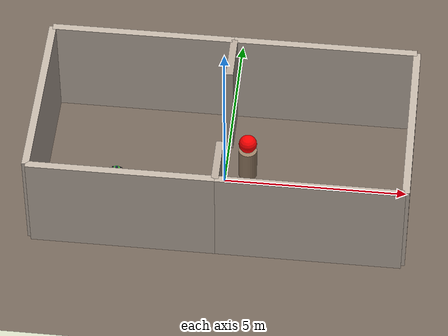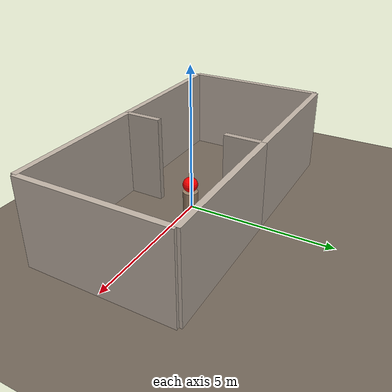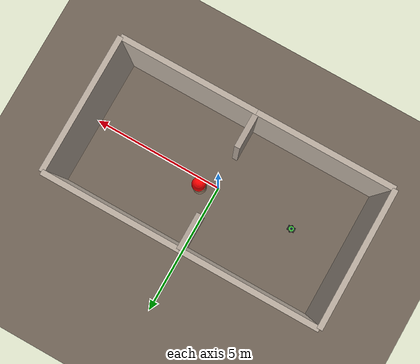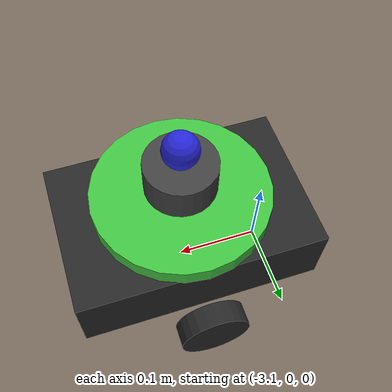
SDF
<?xml version="1.0" ?>
<sdf version="1.6">
  <world name="test_doorway">
    <plugin filename="gz-sim-physics-system" name="gz::sim::systems::Physics"/>
    <plugin filename="gz-sim-user-commands-system" name="gz::sim::systems::UserCommands"/>
    <plugin filename="gz-sim-scene-broadcaster-system" name="gz::sim::systems::SceneBroadcaster"/>
    <plugin filename="gz-sim-sensors-system" name="gz::sim::systems::Sensors">
      <render_engine>ogre2</render_engine>
    </plugin>
    <plugin filename="gz-sim-contact-system" name="gz::sim::systems::Contact"/>

    <scene>
      <ambient>0.6 0.6 0.6 1</ambient>
      <background>0.3 0.3 0.4 1</background>
    </scene>

    <light name="light_1" type="point">
      <pose>-2 0 4 0 0 0</pose>
      <diffuse>0.9 0.9 0.8 1</diffuse>
      <specular>0.3 0.3 0.3 1</specular>
      <attenuation><range>20</range><constant>0.3</constant><linear>0.01</linear><quadratic>0.001</quadratic></attenuation>
    </light>
    <light name="light_2" type="point">
      <pose>2 0 4 0 0 0</pose>
      <diffuse>0.8 0.8 0.7 1</diffuse>
      <specular>0.2 0.2 0.2 1</specular>
      <attenuation><range>20</range><constant>0.3</constant><linear>0.01</linear><quadratic>0.001</quadratic></attenuation>
    </light>

    <physics type="ode">
      <max_step_size>0.001</max_step_size>
      <real_time_factor>1.0</real_time_factor>
      <real_time_update_rate>1000</real_time_update_rate>
    </physics>

    <!-- Floor -->
    <model name="floor">
      <static>true</static>
      <link name="link">
        <collision name="collision"><geometry><plane><normal>0 0 1</normal><size>20 20</size></plane></geometry></collision>
        <visual name="visual">
          <geometry><plane><normal>0 0 1</normal><size>20 20</size></plane></geometry>
          <material><ambient>0.4 0.35 0.3 1</ambient><diffuse>0.45 0.4 0.35 1</diffuse></material>
        </visual>
      </link>
    </model>

    <!-- ==================== ROOM 1 (left, 5m x 5m) ==================== -->
    <model name="r1_north">
      <static>true</static>
      <link name="link">
        <pose>-2.5 2.5 1.5 0 0 0</pose>
        <collision name="collision"><geometry><box><size>5 0.2 3</size></box></geometry></collision>
        <visual name="visual"><geometry><box><size>5 0.2 3</size></box></geometry><material><ambient>0.7 0.65 0.6 1</ambient><diffuse>0.75 0.7 0.65 1</diffuse></material></visual>
      </link>
    </model>
    <model name="r1_south">
      <static>true</static>
      <link name="link">
        <pose>-2.5 -2.5 1.5 0 0 0</pose>
        <collision name="collision"><geometry><box><size>5 0.2 3</size></box></geometry></collision>
        <visual name="visual"><geometry><box><size>5 0.2 3</size></box></geometry><material><ambient>0.7 0.65 0.6 1</ambient><diffuse>0.75 0.7 0.65 1</diffuse></material></visual>
      </link>
    </model>
    <model name="r1_west">
      <static>true</static>
      <link name="link">
        <pose>-5 0 1.5 0 0 0</pose>
        <collision name="collision"><geometry><box><size>0.2 5 3</size></box></geometry></collision>
        <visual name="visual"><geometry><box><size>0.2 5 3</size></box></geometry><material><ambient>0.7 0.65 0.6 1</ambient><diffuse>0.75 0.7 0.65 1</diffuse></material></visual>
      </link>
    </model>

    <!-- ==================== DIVIDING WALL WITH DOORWAY ==================== -->
    <!-- Dividing wall - top section (above doorway) -->
    <model name="div_wall_top">
      <static>true</static>
      <link name="link">
        <pose>0 1.85 1.5 0 0 0</pose>
        <collision name="collision"><geometry><box><size>0.2 1.3 3</size></box></geometry></collision>
        <visual name="visual"><geometry><box><size>0.2 1.3 3</size></box></geometry><material><ambient>0.65 0.6 0.55 1</ambient><diffuse>0.7 0.65 0.6 1</diffuse></material></visual>
      </link>
    </model>
    <!-- Dividing wall - bottom section (below doorway) -->
    <model name="div_wall_bottom">
      <static>true</static>
      <link name="link">
        <pose>0 -1.85 1.5 0 0 0</pose>
        <collision name="collision"><geometry><box><size>0.2 1.3 3</size></box></geometry></collision>
        <visual name="visual"><geometry><box><size>0.2 1.3 3</size></box></geometry><material><ambient>0.65 0.6 0.55 1</ambient><diffuse>0.7 0.65 0.6 1</diffuse></material></visual>
      </link>
    </model>
    <!-- Doorway gap: y from -1.2 to +1.2 (2.4m wide opening) -->

    <!-- ==================== ROOM 2 (right, 5m x 5m) ==================== -->
    <model name="r2_north">
      <static>true</static>
      <link name="link">
        <pose>2.5 2.5 1.5 0 0 0</pose>
        <collision name="collision"><geometry><box><size>5 0.2 3</size></box></geometry></collision>
        <visual name="visual"><geometry><box><size>5 0.2 3</size></box></geometry><material><ambient>0.7 0.65 0.6 1</ambient><diffuse>0.75 0.7 0.65 1</diffuse></material></visual>
      </link>
    </model>
    <model name="r2_south">
      <static>true</static>
      <link name="link">
        <pose>2.5 -2.5 1.5 0 0 0</pose>
        <collision name="collision"><geometry><box><size>5 0.2 3</size></box></geometry></collision>
        <visual name="visual"><geometry><box><size>5 0.2 3</size></box></geometry><material><ambient>0.7 0.65 0.6 1</ambient><diffuse>0.75 0.7 0.65 1</diffuse></material></visual>
      </link>
    </model>
    <model name="r2_east">
      <static>true</static>
      <link name="link">
        <pose>5 0 1.5 0 0 0</pose>
        <collision name="collision"><geometry><box><size>0.2 5 3</size></box></geometry></collision>
        <visual name="visual"><geometry><box><size>0.2 5 3</size></box></geometry><material><ambient>0.7 0.65 0.6 1</ambient><diffuse>0.75 0.7 0.65 1</diffuse></material></visual>
      </link>
    </model>

    <!-- ==================== STATIONARY HUMAN (near doorway) ==================== -->
    <model name="human_static_1">
      <static>true</static>
      <pose>0.6 0.3 0.5 0 0 -1.5</pose>
      <link name="link">
        <collision name="collision">
          <geometry><cylinder><radius>0.25</radius><length>1.0</length></cylinder></geometry>
        </collision>
        <visual name="body">
          <geometry><cylinder><radius>0.25</radius><length>1.0</length></cylinder></geometry>
          <material><ambient>0.55 0.45 0.35 1</ambient><diffuse>0.6 0.5 0.4 1</diffuse></material>
        </visual>
        <visual name="head">
          <pose>0 0 0.75 0 0 0</pose>
          <geometry><sphere><radius>0.25</radius></sphere></geometry>
          <material><ambient>1.0 0.0 0.0 1</ambient><diffuse>1.0 0.0 0.0 1</diffuse></material>
        </visual>
      </link>
    </model>

    <!-- ==================== TURTLEBOT3 ROVER ==================== -->
    <model name="turtlebot3_rover">
      <static>false</static>
      <pose>-3 0 0.0 0 0 0</pose>

      <link name="base_footprint"><pose>0 0 0.01 0 0 0</pose></link>
      <link name="base_link">
        <pose>0 0 0.08 0 0 0</pose>
        <inertial><mass>1.5</mass><inertia><ixx>0.01</ixx><iyy>0.01</iyy><izz>0.01</izz></inertia></inertial>
        <collision name="base_collision"><geometry><box><size>0.28 0.18 0.08</size></box></geometry></collision>
        <visual name="base_visual"><geometry><box><size>0.28 0.18 0.08</size></box></geometry><material><ambient>0.1 0.1 0.1 1</ambient><diffuse>0.15 0.15 0.15 1</diffuse></material></visual>
      </link>
      <link name="top_plate"><pose>0 0 0.14 0 0 0</pose><inertial><mass>0.3</mass><inertia><ixx>0.002</ixx><iyy>0.002</iyy><izz>0.002</izz></inertia></inertial><collision name="top_plate_collision"><geometry><cylinder><radius>0.10</radius><length>0.02</length></cylinder></geometry></collision><visual name="top_plate_visual"><geometry><cylinder><radius>0.10</radius><length>0.02</length></cylinder></geometry><material><ambient>0.2 0.7 0.2 1</ambient><diffuse>0.25 0.75 0.25 1</diffuse></material></visual></link>
      <link name="wheel_left"><pose>0 0.12 0.04 -1.5708 0 0</pose><inertial><mass>0.15</mass><inertia><ixx>0.0001</ixx><iyy>0.0001</iyy><izz>0.0001</izz></inertia></inertial><collision name="wheel_left_collision"><geometry><cylinder><radius>0.04</radius><length>0.025</length></cylinder></geometry><surface><friction><ode><mu>1.0</mu><mu2>1.0</mu2></ode></friction></surface></collision><visual name="wheel_left_visual"><geometry><cylinder><radius>0.04</radius><length>0.025</length></cylinder></geometry><material><ambient>0.1 0.1 0.1 1</ambient><diffuse>0.15 0.15 0.15 1</diffuse></material></visual></link>
      <link name="wheel_right"><pose>0 -0.12 0.04 -1.5708 0 0</pose><inertial><mass>0.15</mass><inertia><ixx>0.0001</ixx><iyy>0.0001</iyy><izz>0.0001</izz></inertia></inertial><collision name="wheel_right_collision"><geometry><cylinder><radius>0.04</radius><length>0.025</length></cylinder></geometry><surface><friction><ode><mu>1.0</mu><mu2>1.0</mu2></ode></friction></surface></collision><visual name="wheel_right_visual"><geometry><cylinder><radius>0.04</radius><length>0.025</length></cylinder></geometry><material><ambient>0.1 0.1 0.1 1</ambient><diffuse>0.15 0.15 0.15 1</diffuse></material></visual></link>
      <link name="caster_front"><pose>0.1 0 0.015 0 0 0</pose><inertial><mass>0.05</mass><inertia><ixx>0.00001</ixx><iyy>0.00001</iyy><izz>0.00001</izz></inertia></inertial><collision name="caster_front_collision"><geometry><sphere><radius>0.015</radius></sphere></geometry><surface><friction><ode><mu>0.0</mu><mu2>0.0</mu2></ode></friction></surface></collision><visual name="caster_front_visual"><geometry><sphere><radius>0.015</radius></sphere></geometry><material><ambient>0.3 0.3 0.3 1</ambient><diffuse>0.35 0.35 0.35 1</diffuse></material></visual></link>
      <link name="caster_back"><pose>-0.1 0 0.015 0 0 0</pose><inertial><mass>0.05</mass><inertia><ixx>0.00001</ixx><iyy>0.00001</iyy><izz>0.00001</izz></inertia></inertial><collision name="caster_back_collision"><geometry><sphere><radius>0.015</radius></sphere></geometry><surface><friction><ode><mu>0.0</mu><mu2>0.0</mu2></ode></friction></surface></collision><visual name="caster_back_visual"><geometry><sphere><radius>0.015</radius></sphere></geometry><material><ambient>0.3 0.3 0.3 1</ambient><diffuse>0.35 0.35 0.35 1</diffuse></material></visual></link>
      <link name="lidar_link">
        <pose>0 0 0.18 0 0 0</pose>
        <inertial><mass>0.2</mass><inertia><ixx>0.001</ixx><iyy>0.001</iyy><izz>0.001</izz></inertia></inertial>
        <collision name="lidar_collision"><geometry><cylinder><radius>0.04</radius><length>0.04</length></cylinder></geometry></collision>
        <visual name="lidar_visual"><geometry><cylinder><radius>0.04</radius><length>0.04</length></cylinder></geometry><material><ambient>0.2 0.2 0.2 1</ambient><diffuse>0.25 0.25 0.25 1</diffuse></material></visual>
        <sensor name="lidar" type="gpu_lidar">
          <always_on>true</always_on><visualize>true</visualize><update_rate>10</update_rate>
          <topic>scan</topic><gz_frame_id>lidar_link</gz_frame_id>
          <lidar><scan><horizontal><samples>360</samples><resolution>1</resolution><min_angle>-3.14159</min_angle><max_angle>3.14159</max_angle></horizontal></scan>
          <range><min>0.12</min><max>12.0</max><resolution>0.01</resolution></range>
          <noise><type>gaussian</type><mean>0.0</mean><stddev>0.01</stddev></noise></lidar>
        </sensor>
      </link>
      <link name="camera_link">
        <pose>0 0 0.22 0 0 0</pose>
        <inertial><mass>0.1</mass><inertia><ixx>0.0001</ixx><iyy>0.0001</iyy><izz>0.0001</izz></inertia></inertial>
        <collision name="camera_collision"><geometry><sphere><radius>0.02</radius></sphere></geometry></collision>
        <visual name="camera_visual"><geometry><sphere><radius>0.02</radius></sphere></geometry><material><ambient>0.1 0.1 0.8 1</ambient><diffuse>0.15 0.15 0.85 1</diffuse></material></visual>
        <sensor name="camera_front" type="camera"><always_on>true</always_on><update_rate>15</update_rate><topic>camera/front/image</topic><camera><horizontal_fov>1.57</horizontal_fov><image><width>640</width><height>480</height><format>R8G8B8</format></image><clip><near>0.1</near><far>15.0</far></clip></camera></sensor>
        <sensor name="camera_right" type="camera"><pose>0 0 0 0 0 -1.5708</pose><always_on>true</always_on><update_rate>15</update_rate><topic>camera/right/image</topic><camera><horizontal_fov>1.57</horizontal_fov><image><width>640</width><height>480</height><format>R8G8B8</format></image><clip><near>0.1</near><far>15.0</far></clip></camera></sensor>
        <sensor name="camera_back" type="camera"><pose>0 0 0 0 0 3.14159</pose><always_on>true</always_on><update_rate>15</update_rate><topic>camera/back/image</topic><camera><horizontal_fov>1.57</horizontal_fov><image><width>640</width><height>480</height><format>R8G8B8</format></image><clip><near>0.1</near><far>15.0</far></clip></camera></sensor>
        <sensor name="camera_left" type="camera"><pose>0 0 0 0 0 1.5708</pose><always_on>true</always_on><update_rate>15</update_rate><topic>camera/left/image</topic><camera><horizontal_fov>1.57</horizontal_fov><image><width>640</width><height>480</height><format>R8G8B8</format></image><clip><near>0.1</near><far>15.0</far></clip></camera></sensor>
      </link>

      <joint name="base_joint" type="fixed"><parent>base_footprint</parent><child>base_link</child></joint>
      <joint name="top_plate_joint" type="fixed"><parent>base_link</parent><child>top_plate</child></joint>
      <joint name="wheel_left_joint" type="revolute"><parent>base_link</parent><child>wheel_left</child><axis><xyz>0 0 1</xyz><limit><lower>-1e16</lower><upper>1e16</upper></limit></axis></joint>
      <joint name="wheel_right_joint" type="revolute"><parent>base_link</parent><child>wheel_right</child><axis><xyz>0 0 1</xyz><limit><lower>-1e16</lower><upper>1e16</upper></limit></axis></joint>
      <joint name="caster_front_joint" type="ball"><parent>base_link</parent><child>caster_front</child></joint>
      <joint name="caster_back_joint" type="ball"><parent>base_link</parent><child>caster_back</child></joint>
      <joint name="lidar_joint" type="fixed"><parent>top_plate</parent><child>lidar_link</child></joint>
      <joint name="camera_joint" type="fixed"><parent>lidar_link</parent><child>camera_link</child></joint>

      <plugin filename="gz-sim-diff-drive-system" name="gz::sim::systems::DiffDrive">
        <left_joint>wheel_left_joint</left_joint><right_joint>wheel_right_joint</right_joint>
        <wheel_separation>0.24</wheel_separation><wheel_radius>0.04</wheel_radius>
        <max_linear_acceleration>1.0</max_linear_acceleration>
        <topic>cmd_vel</topic><odom_topic>odom</odom_topic>
        <frame_id>odom</frame_id><child_frame_id>base_footprint</child_frame_id>
        <odom_publish_frequency>30</odom_publish_frequency>
      </plugin>
    </model>

  </world>
</sdf>
